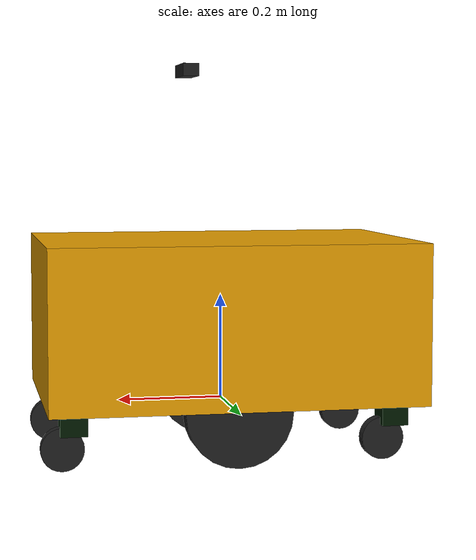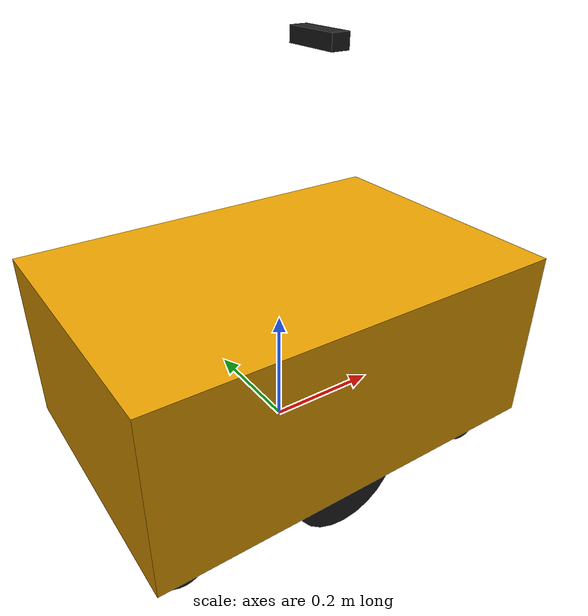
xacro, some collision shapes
<?xml version="1.0"?>
    <robot xmlns:xacro="http://www.ros.org/wiki/xacro"  name="moborobo_short">
        <xacro:include filename="robot_core.xacro" />
        <xacro:include filename="controller.xacro" />
        <xacro:include filename="oak_d_pro.xacro"/>
        <!-- commenting this out because it's not needed for now, oak camera supplies all -->
    </robot>

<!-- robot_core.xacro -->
<robot xmlns:xacro="http://www.ros.org/wiki/xacro" name="moborobo_robot">

  <xacro:property name="mesh_path" value="file://$(find moborobo_robot)/meshes/moborobo_short.stl"/>

  <link name="base_link">
    <visual>
      <geometry>
        <mesh filename="${mesh_path}" scale="1 1 1"/>
      </geometry>
    </visual>
    <collision>
      <origin xyz="0 0 0.04" rpy="0 0 0"/>
      <geometry>
        <box size="0.70 0.470 0.3"/>
      </geometry>
    </collision>
    <inertial>
      <origin xyz="0 0 0.06" rpy="0 0 0"/>
      <mass value="20.0"/>
      <inertia ixx="0.51816" ixy="0" ixz="0" iyy="0.966664" iyz="0" izz="1.18484"/>
    </inertial>
  </link>

  <link name="base_footprint"/>
  <joint name="base_footprint_joint" type="fixed">
    <parent link="base_footprint"/>
    <child link="base_link"/>
    <origin xyz="0 0 0.120" rpy="0 0 0"/>
  </joint>

  <xacro:macro name="caster_wheel" params="caster_name caster_xyz wheel_xyz">
    <link name="${caster_name}">
      <visual>
        <geometry>
          <box size="0.05 0.05 0.05"/>
        </geometry>
        <material name="green">
          <color rgba="0.0 0.1 0.0 1"/>
        </material>
      </visual>
      <collision>
        <geometry>
          <box size="0.05 0.05 0.05"/>
        </geometry>
      </collision>
      <inertial>
        <mass value="0.5"/>
        <inertia ixx="0.000208332" ixy="0" ixz="0" iyy="0.000208332" iyz="0" izz="0.000208332"/>
      </inertial>
    </link>

    <joint name="${caster_name}_joint" type="continuous">
      <parent link="base_link"/>
      <child link="${caster_name}"/>
      <origin xyz="${caster_xyz}" rpy="0 0 0"/>
      <axis xyz="0 0 1"/>
    </joint>

    <link name="${caster_name}_wheel">
      <visual>
        <geometry>
          <cylinder radius="0.04" length="0.0228"/>
        </geometry>
      </visual>
      <collision>
        <geometry>
          <cylinder radius="0.04" length="0.0228"/>
        </geometry>
      </collision>
      <inertial>
        <mass value="0.5"/>
        <inertia ixx="0.00022166" ixy="0" ixz="0" iyy="0.00022166" iyz="0" izz="0.0004"/>
      </inertial>
    </link>

    <joint name="${caster_name}_wheel_joint" type="continuous">
      <parent link="${caster_name}"/>
      <child link="${caster_name}_wheel"/>
      <origin xyz="${wheel_xyz}" rpy="-1.5708 0 0"/>
      <axis xyz="0 0 1"/>
    </joint>
  </xacro:macro>

  <xacro:caster_wheel caster_name="back_left_caster" caster_xyz="-0.300 0.150 -0.130" wheel_xyz="0.02 0 -0.05"/>
  <xacro:caster_wheel caster_name="back_right_caster" caster_xyz="-0.300 -0.150 -0.130" wheel_xyz="0.02 0 -0.05"/>
  <xacro:caster_wheel caster_name="front_left_caster" caster_xyz="0.300 0.150 -0.130" wheel_xyz="0.02 0 -0.05"/>
  <xacro:caster_wheel caster_name="front_right_caster" caster_xyz="0.300 -0.150 -0.130" wheel_xyz="0.02 0 -0.05"/>

  <link name="right_wheel">
    <visual>
      <geometry>
        <cylinder radius="0.1" length="0.04"/>
      </geometry>
    </visual>
    <collision>
      <geometry>
        <cylinder radius="0.1" length="0.04"/>
      </geometry>
    </collision>
    <inertial>
      <mass value="2"/>
      <inertia ixx="0.005066668" ixy="0" ixz="0" iyy="0.005066668" iyz="0" izz="0.01"/>
    </inertial>
  </link>

  <joint name="right_wheel_joint" type="continuous">
    <parent link="base_link"/>
    <child link="right_wheel"/>
    <origin xyz="0.0 -0.175 -0.120" rpy="-1.5708 0 0"/>
    <axis xyz="0 0 1"/>
  </joint>

  <link name="left_wheel">
    <visual>
      <geometry>
        <cylinder radius="0.1" length="0.04"/>
      </geometry>
    </visual>
    <collision>
      <geometry>
        <cylinder radius="0.1" length="0.04"/>
      </geometry>
    </collision>
    <inertial>
      <mass value="0.5"/>
      <inertia ixx="0.001266667" ixy="0" ixz="0" iyy="0.001266667" iyz="0" izz="0.0025"/>
    </inertial>
  </link>

  <joint name="left_wheel_joint" type="continuous">
    <parent link="base_link"/>
    <child link="left_wheel"/>
    <origin xyz="0.0 0.175 -0.120" rpy="-1.5708 0 0"/>
    <axis xyz="0 0 1"/>
  </joint>

  <gazebo>
    <plugin name="gazebo_ros_joint_state_publisher" filename="libgazebo_ros_joint_state_publisher.so">
      <update_rate>50</update_rate>
      <joint_name>front_left_caster_joint</joint_name>
      <joint_name>front_left_caster_wheel_joint</joint_name>
      <joint_name>front_right_caster_joint</joint_name>
      <joint_name>front_right_caster_wheel_joint</joint_name>
      <joint_name>back_left_caster_joint</joint_name>
      <joint_name>back_left_caster_wheel_joint</joint_name>
      <joint_name>back_right_caster_joint</joint_name>
      <joint_name>back_right_caster_wheel_joint</joint_name>
      <joint_name>left_wheel_joint</joint_name>
      <joint_name>right_wheel_joint</joint_name>
    </plugin>
  </gazebo>

  <gazebo>
    <plugin name="gazebo_ros_p3d" filename="libgazebo_ros_p3d.so">
      <ros>
        <remapping>odom:=ground_truth/odom</remapping>
      </ros>
      <body_name>base_link</body_name>
      <frame_name>world</frame_name>
      <update_rate>50</update_rate>
      <xyz_offsets>0 0 0</xyz_offsets>
      <rpy_offsets>0 0 0</rpy_offsets>
    </plugin>
  </gazebo>

  <!-- Gazebo materials -->
  <gazebo reference="back_left_caster"><material>Gazebo/White</material></gazebo>
  <gazebo reference="back_left_caster_wheel"><material>Gazebo/Black</material></gazebo>
  <gazebo reference="back_right_caster"><material>Gazebo/White</material></gazebo>
  <gazebo reference="back_right_caster_wheel"><material>Gazebo/Black</material></gazebo>
  <gazebo reference="front_left_caster"><material>Gazebo/White</material></gazebo>
  <gazebo reference="front_left_caster_wheel"><material>Gazebo/Black</material></gazebo>
  <gazebo reference="front_right_caster"><material>Gazebo/White</material></gazebo>
  <gazebo reference="front_right_caster_wheel"><material>Gazebo/Black</material></gazebo>
  <gazebo reference="left_wheel"><material>Gazebo/Black</material></gazebo>
  <gazebo reference="right_wheel"><material>Gazebo/Black</material></gazebo>

</robot>

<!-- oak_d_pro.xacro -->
<robot xmlns:xacro="http://www.ros.org/wiki/xacro">

    <!-- OAK-D Pro: same mounting position as the previous camera -->
    <joint name="oak_joint" type="fixed">
        <parent link="base_link"/>
        <child link="oak_link"/>
        <origin xyz="0.065 0 0.51" rpy="0 0 0"/>
    </joint>

    <link name="oak_link">
        <visual>
            <geometry>
                <!-- OAK-D Pro body: ~98 mm wide, 30 mm deep, 24 mm tall -->
                <box size="0.030 0.098 0.024"/>
            </geometry>
        </visual>
    </link>

    <!-- Optical frames: ROS convention (Z forward, X right, Y down) -->
    <joint name="oak_rgb_camera_optical_joint" type="fixed">
        <parent link="oak_link"/>
        <child link="oak_rgb_camera_optical_frame"/>
        <origin xyz="0 0 0" rpy="${-pi/2} 0 ${-pi/2}"/>
    </joint>
    <link name="oak_rgb_camera_optical_frame"/>

    <joint name="oak_stereo_camera_optical_joint" type="fixed">
        <parent link="oak_link"/>
        <child link="oak_stereo_camera_optical_frame"/>
        <origin xyz="0 0 0" rpy="${-pi/2} 0 ${-pi/2}"/>
    </joint>
    <link name="oak_stereo_camera_optical_frame"/>

    <gazebo reference="oak_link">

        <!-- RGB camera: 12MP, ~69 deg HFOV -->
        <sensor name="oak_rgb" type="camera">
            <update_rate>30</update_rate>
            <visualize>true</visualize>
            <camera>
                <horizontal_fov>1.2043</horizontal_fov>
                <image>
                    <format>R8G8B8</format>
                    <width>1920</width>
                    <height>1080</height>
                </image>
                <clip>
                    <near>0.1</near>
                    <far>20.0</far>
                </clip>
            </camera>
            <plugin name="oak_rgb_controller" filename="libgazebo_ros_camera.so">
                <ros>
                    <namespace>/oak/rgb</namespace>
                </ros>
                <frame_name>oak_rgb_camera_optical_frame</frame_name>
            </plugin>
        </sensor>

        <!-- Stereo depth + point cloud: ~72 deg HFOV, 19 cm – 10 m range -->
        <sensor name="oak_stereo" type="depth">
            <update_rate>30</update_rate>
            <visualize>false</visualize>
            <camera>
                <horizontal_fov>1.2566</horizontal_fov>
                <image>
                    <format>R8G8B8</format>
                    <width>640</width>
                    <height>400</height>
                </image>
                <clip>
                    <near>0.19</near>
                    <far>10.0</far>
                </clip>
            </camera>
            <!-- libgazebo_ros_camera.so handles depth sensors in Humble (no separate depth_camera plugin) -->
            <plugin name="oak_stereo_controller" filename="libgazebo_ros_camera.so">
                <ros>
                    <namespace>/oak/stereo</namespace>
                </ros>
                <frame_name>oak_stereo_camera_optical_frame</frame_name>
            </plugin>
        </sensor>

        <!-- IMU: BNO085, 200 Hz -->
        <sensor name="oak_imu" type="imu">
            <always_on>true</always_on>
            <update_rate>200</update_rate>
            <plugin name="oak_imu_controller" filename="libgazebo_ros_imu_sensor.so">
                <ros>
                    <remapping>~/out:=/oak/imu/data</remapping>
                </ros>
                <initial_orientation_as_reference>false</initial_orientation_as_reference>
                <frame_name>oak_link</frame_name>
            </plugin>
        </sensor>

        <material>Gazebo/Black</material>

    </gazebo>

</robot>
